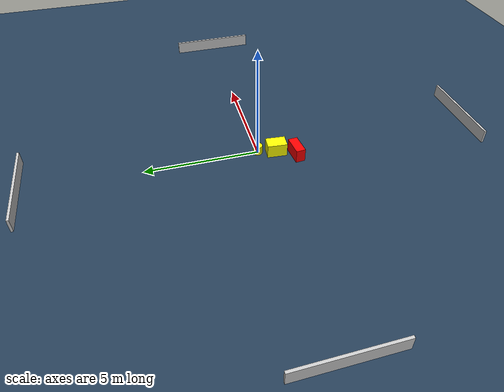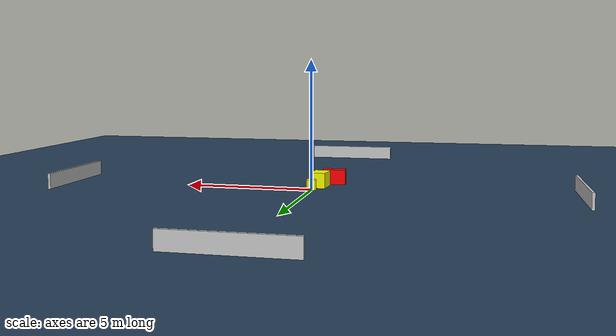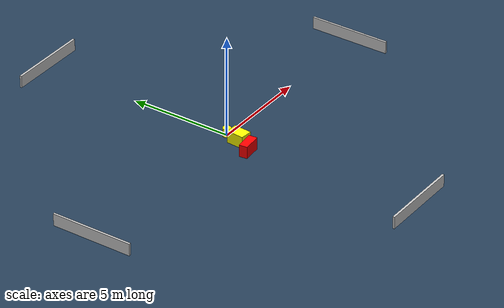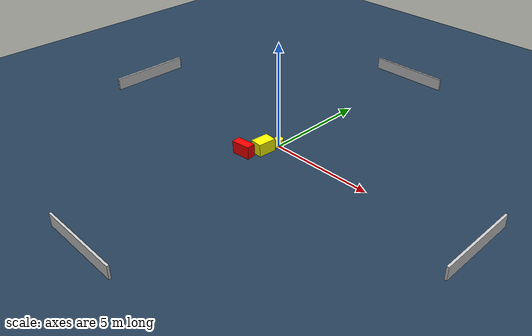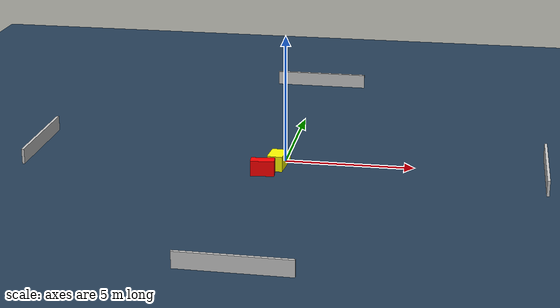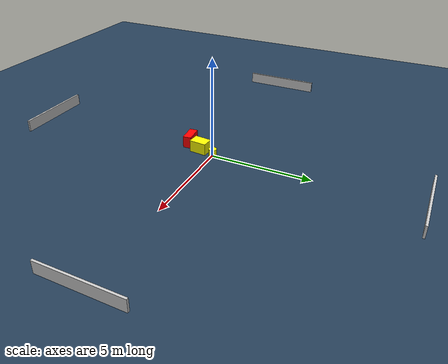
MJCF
<?xml version="1.0" ?>
<mujoco model="generated_environment">
  <option timestep="0.01" integrator="RK4" cone="elliptic"/>
  <default>
    <geom density="1"/>
  </default>
  <asset>
    <texture builtin="gradient" height="3072" name="skybox" rgb1="0.3 0.5 0.7" rgb2="0 0 0" type="skybox" width="512"/>
    <texture builtin="checker" height="300" name="groundplane" rgb1="0.2 0.3 0.4" rgb2="0.1 0.2 0.3" type="2d" width="300"/>
    <material name="groundplane" reflectance="0.2" texrepeat="5 5" texture="groundplane"/>
  </asset>
  <worldbody>
    <light dir="0 0 -1" directional="true" pos="0 0 1.5"/>
    <geom condim="3" friction="0.5 0.005 0.001" material="groundplane" name="floor" pos="0 0 0" size="0 0 0.05" type="plane"/>
    <body name="walls">
      <geom name="wall_1" condim="4" pos="-10.0 0.0 0.3" rgba="0.800000011920929 0.800000011920929 0.800000011920929 1.0" size="0.05 2.0 0.3" type="box"/>
      <geom name="wall_2" condim="4" pos="10.0 0.0 0.3" rgba="0.800000011920929 0.800000011920929 0.800000011920929 1.0" size="0.05 2.0 0.3" type="box"/>
      <geom name="wall_3" condim="4" pos="0.0 -10.0 0.3" rgba="0.800000011920929 0.800000011920929 0.800000011920929 1.0" size="2.0 0.05 0.3" type="box"/>
      <geom name="wall_4" condim="4" pos="0.0 10.0 0.3" rgba="0.800000011920929 0.800000011920929 0.800000011920929 1.0" size="2.0 0.05 0.3" type="box"/>
    </body>
    <body name="robot">
      <joint name="joint_x" type="slide" pos="0 0 0" axis="1 0 0"/>
      <joint name="joint_y" type="slide" pos="0 0 0" axis="0 1 0"/>
      <geom name="robot" type="cylinder" pos="0.0 0.0 0.2" size="0.2 0.2 0.0" mass="5.0" friction="1.0 0.005 0.0001" condim="4" rgba="1.0 1.0 0.0 1.0"/>
    </body>
    <body name="obstacle_1_movable">
      <geom name="obstacle_1_movable" condim="4" pos="-0.1988630336347225 -0.7744489168097812 0.3" euler="0 0 85.53193538811885" friction="0.0 0.005 0.001" rgba="1.0 1.0 0.0 1.0" size="0.43242622312498524 0.2951046328226413 0.3" type="box" mass="0.1"/>
      <joint type="free"/>
    </body>
    <body name="obstacle_2_static">
      <geom name="obstacle_2_static" condim="4" pos="-0.6251045456368086 -1.5696402205747764 0.3" euler="0 0 275.3527635535593" friction="0.0 0.005 0.001" rgba="1.0 0.0 0.0 1.0" size="0.2082099264123215 0.45634183458750516 0.3" type="box"/>
    </body>
  </worldbody>
  <actuator>
    <motor name="actuator_x" joint="joint_x" gear="1" ctrlrange="-1 1"/>
    <motor name="actuator_y" joint="joint_y" gear="1" ctrlrange="-1 1"/>
  </actuator>
</mujoco>
